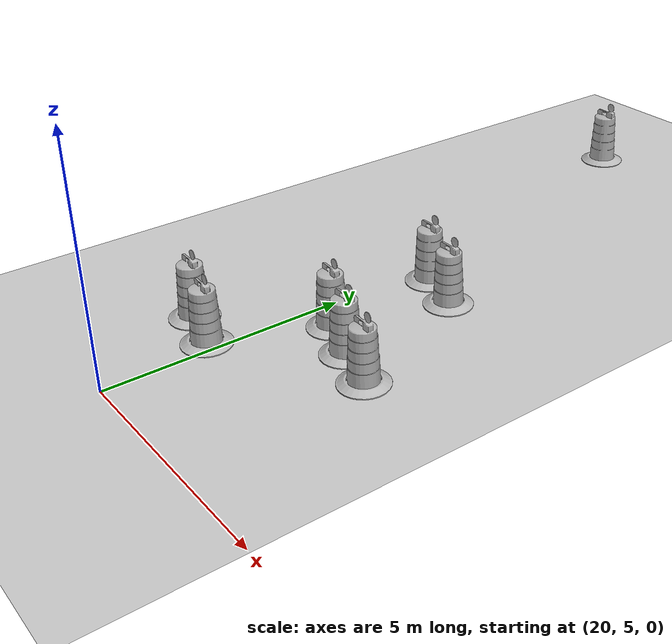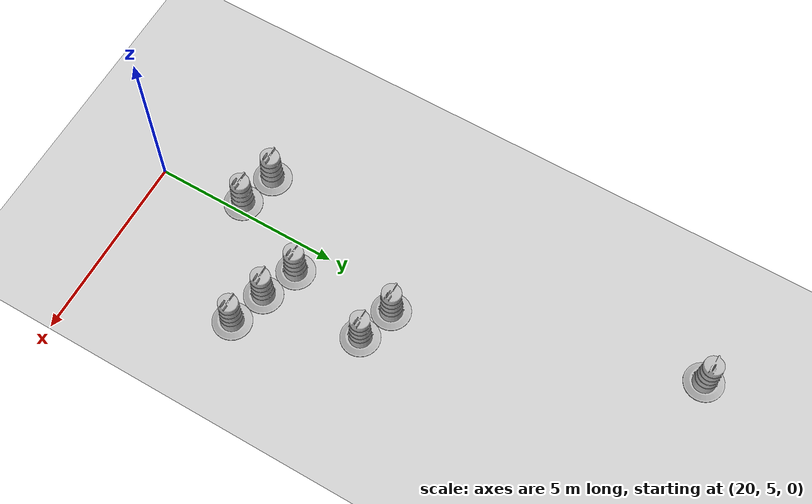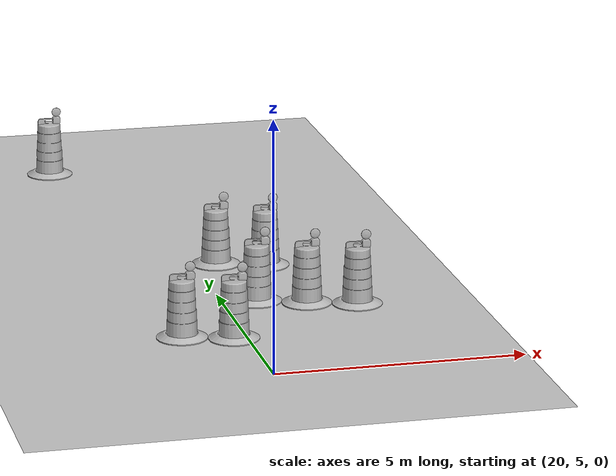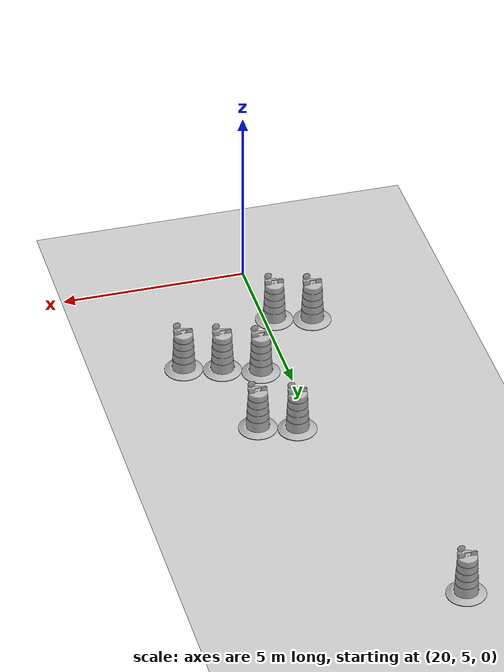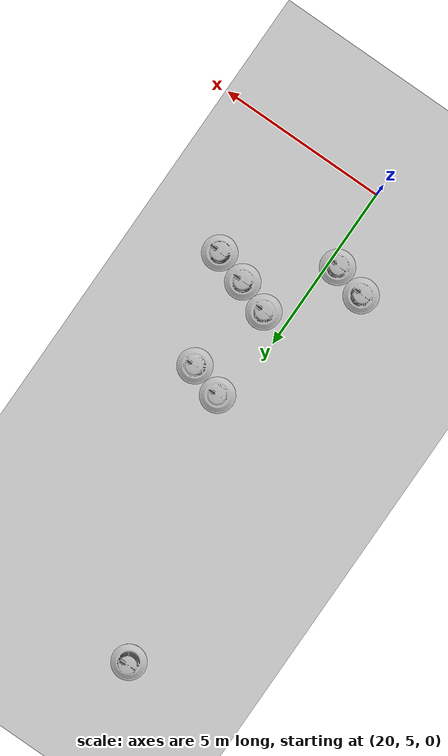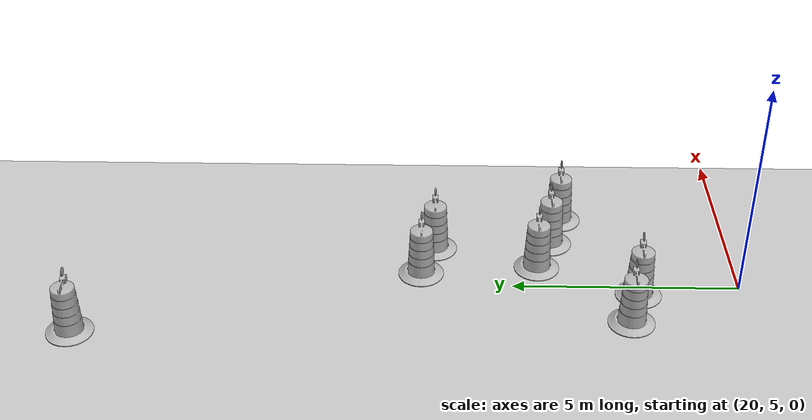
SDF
<sdf version="1.7">
 <world name="default">
  <model name="my_ground_plane">
   <static>1</static>
   <link name="link">
    <collision name="collision">
     <geometry><plane><normal>0 0 1</normal><size>50.11 45.88</size></plane></geometry>
     <surface><friction><ode><mu>100</mu><mu2>50</mu2></ode></friction></surface>
    </collision>
    <visual name="visual">
     <cast_shadows>0</cast_shadows>
     <geometry><plane><normal>0 0 1</normal><size>50.11 45.88</size></plane></geometry>
     <material>
      <script>
       <uri>model://my_ground_plane/materials/scripts/my_ground_plane.material</uri>
       <uri>model://my_ground_plane/materials/textures</uri>
       <name>MyGroundPlane/Image</name>
      </script>
     </material>
    </visual>
   </link>
  </model>
  <model name="Construction Barrel_clone_2">
   <link name="link">
    <inertial>
     <pose>0 0 0.4 0 -0 0</pose>
     <mass>500</mass>
     <inertia><ixx>51.2096</ixx><iyy>51.2096</iyy><izz>25</izz><ixy>0</ixy><ixz>0</ixz><iyz>0</iyz></inertia>
    </inertial>
    <collision name="collision">
     <geometry><mesh><uri>model://construction_barrel/meshes/construction_barrel.dae</uri></mesh></geometry>
    </collision>
    <visual name="visual">
     <geometry><mesh><uri>model://construction_barrel/meshes/construction_barrel.dae</uri></mesh></geometry>
    </visual>
   </link>
   <pose>18.2399 19.476 -0 0 0 -6.4e-05</pose>
  </model>
  <model name="Construction Barrel_clone_3">
   <link name="link">
    <inertial>
     <pose>0 0 0.4 0 -0 0</pose>
     <mass>500</mass>
     <inertia><ixx>51.2096</ixx><iyy>51.2096</iyy><izz>25</izz><ixy>0</ixy><ixz>0</ixz><iyz>0</iyz></inertia>
    </inertial>
    <collision name="collision">
     <geometry><mesh><uri>model://construction_barrel/meshes/construction_barrel.dae</uri></mesh></geometry>
    </collision>
    <visual name="visual">
     <geometry><mesh><uri>model://construction_barrel/meshes/construction_barrel.dae</uri></mesh></geometry>
    </visual>
   </link>
   <pose>20.4418 12.0359 -1e-06 -1e-06 4e-06 -7.8e-05</pose>
  </model>
  <model name="Construction Barrel_clone_4">
   <link name="link">
    <inertial>
     <pose>0 0 0.4 0 -0 0</pose>
     <mass>500</mass>
     <inertia><ixx>51.2096</ixx><iyy>51.2096</iyy><izz>25</izz><ixy>0</ixy><ixz>0</ixz><iyz>0</iyz></inertia>
    </inertial>
    <collision name="collision">
     <geometry><mesh><uri>model://construction_barrel/meshes/construction_barrel.dae</uri></mesh></geometry>
    </collision>
    <visual name="visual">
     <geometry><mesh><uri>model://construction_barrel/meshes/construction_barrel.dae</uri></mesh></geometry>
    </visual>
   </link>
   <pose>21.4169 11.7274 -0 0 0 -7e-05</pose>
  </model>
  <model name="Construction Barrel_clone_5">
   <link name="link">
    <inertial>
     <pose>0 0 0.4 0 -0 0</pose>
     <mass>500</mass>
     <inertia><ixx>51.2096</ixx><iyy>51.2096</iyy><izz>25</izz><ixy>0</ixy><ixz>0</ixz><iyz>0</iyz></inertia>
    </inertial>
    <collision name="collision">
     <geometry><mesh><uri>model://construction_barrel/meshes/construction_barrel.dae</uri></mesh></geometry>
    </collision>
    <visual name="visual">
     <geometry><mesh><uri>model://construction_barrel/meshes/construction_barrel.dae</uri></mesh></geometry>
    </visual>
   </link>
   <pose>22.6339 8.78432 -0 -0 -0 -0.045572</pose>
  </model>
  <model name="Construction Barrel_clone_6">
   <link name="link">
    <inertial>
     <pose>0 0 0.4 0 -0 0</pose>
     <mass>500</mass>
     <inertia><ixx>51.2096</ixx><iyy>51.2096</iyy><izz>25</izz><ixy>0</ixy><ixz>0</ixz><iyz>0</iyz></inertia>
    </inertial>
    <collision name="collision">
     <geometry><mesh><uri>model://construction_barrel/meshes/construction_barrel.dae</uri></mesh></geometry>
    </collision>
    <visual name="visual">
     <geometry><mesh><uri>model://construction_barrel/meshes/construction_barrel.dae</uri></mesh></geometry>
    </visual>
   </link>
   <pose>21.6576 9.07491 0 0 -0 0.028761</pose>
  </model>
  <model name="Construction Barrel_clone_7">
   <link name="link">
    <inertial>
     <pose>0 0 0.4 0 -0 0</pose>
     <mass>500</mass>
     <inertia><ixx>51.2096</ixx><iyy>51.2096</iyy><izz>25</izz><ixy>0</ixy><ixz>0</ixz><iyz>0</iyz></inertia>
    </inertial>
    <collision name="collision">
     <geometry><mesh><uri>model://construction_barrel/meshes/construction_barrel.dae</uri></mesh></geometry>
    </collision>
    <visual name="visual">
     <geometry><mesh><uri>model://construction_barrel/meshes/construction_barrel.dae</uri></mesh></geometry>
    </visual>
   </link>
   <pose>20.705 9.42553 0 0 0 -0.052545</pose>
  </model>
  <model name="Construction Barrel_clone_8">
   <link name="link">
    <inertial>
     <pose>0 0 0.4 0 -0 0</pose>
     <mass>500</mass>
     <inertia><ixx>51.2096</ixx><iyy>51.2096</iyy><izz>25</izz><ixy>0</ixy><ixz>0</ixz><iyz>0</iyz></inertia>
    </inertial>
    <collision name="collision">
     <geometry><mesh><uri>model://construction_barrel/meshes/construction_barrel.dae</uri></mesh></geometry>
    </collision>
    <visual name="visual">
     <geometry><mesh><uri>model://construction_barrel/meshes/construction_barrel.dae</uri></mesh></geometry>
    </visual>
   </link>
   <pose>18.7608 7.52161 -2e-06 -5e-06 -4e-06 -0.010035</pose>
  </model>
  <model name="Construction Barrel_clone_9">
   <link name="link">
    <inertial>
     <pose>0 0 0.4 0 -0 0</pose>
     <mass>500</mass>
     <inertia><ixx>51.2096</ixx><iyy>51.2096</iyy><izz>25</izz><ixy>0</ixy><ixz>0</ixz><iyz>0</iyz></inertia>
    </inertial>
    <collision name="collision">
     <geometry><mesh><uri>model://construction_barrel/meshes/construction_barrel.dae</uri></mesh></geometry>
    </collision>
    <visual name="visual">
     <geometry><mesh><uri>model://construction_barrel/meshes/construction_barrel.dae</uri></mesh></geometry>
    </visual>
   </link>
   <pose>19.7414 7.24863 -3e-06 -5e-06 -4e-06 -0.043666</pose>
  </model>
 </world>
</sdf>
